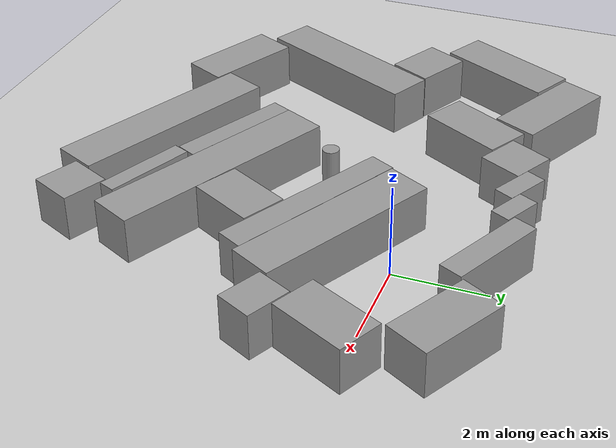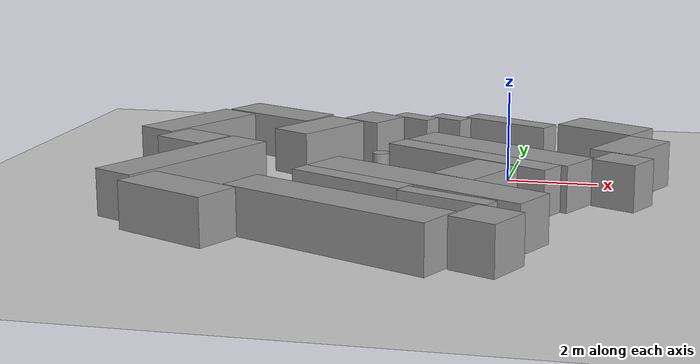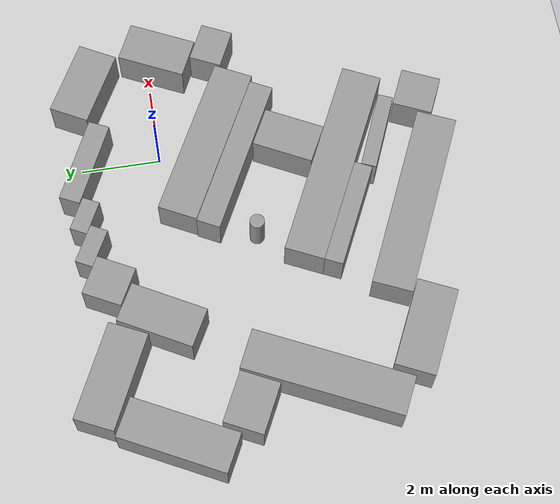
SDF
<sdf version="1.6">
 <world name="default">
  <model name="ground_plane">
   <static>1</static>
   <link name="link">
    <collision name="collision">
     <geometry><plane><normal>0 0 1</normal><size>100 100</size></plane></geometry>
     <surface>
      <contact><collide_bitmask>65535</collide_bitmask></contact>
      <friction><ode><mu>100</mu><mu2>50</mu2></ode></friction>
     </surface>
    </collision>
    <visual name="visual">
     <cast_shadows>0</cast_shadows>
     <geometry><plane><normal>0 0 1</normal><size>100 100</size></plane></geometry>
     <material>
      <script><uri>file://media/materials/scripts/gazebo.material</uri><name>Gazebo/Grey</name></script>
     </material>
    </visual>
   </link>
  </model>
  <light name="sun" type="directional">
   <pose>0 0 10 0 -0 0</pose>
   <diffuse>0.8 0.8 0.8 1</diffuse>
   <specular>0.2 0.2 0.2 1</specular>
   <attenuation>
    <range>1000</range>
    <constant>0.9</constant>
    <linear>0.01</linear>
    <quadratic>0.001</quadratic>
   </attenuation>
   <direction>-0.5 0.1 -0.9</direction>
  </light>
  <gravity>0 0 -9.8</gravity>
  <magnetic_field>6e-06 2.3e-05 -4.2e-05</magnetic_field>
  <atmosphere type="adiabatic"/>
  <physics name="default_physics" default="0" type="ode">
   <max_step_size>0.001</max_step_size>
   <real_time_factor>1</real_time_factor>
   <real_time_update_rate>1000</real_time_update_rate>
  </physics>
  <scene><ambient>0.4 0.4 0.4 1</ambient><background>0.7 0.7 0.7 1</background><shadows>1</shadows></scene>
  <audio><device>default</device></audio>
  <spherical_coordinates>
   <surface_model>EARTH_WGS84</surface_model>
   <latitude_deg>0</latitude_deg>
   <longitude_deg>0</longitude_deg>
   <elevation>0</elevation>
   <heading_deg>0</heading_deg>
  </spherical_coordinates>
  <model name="unit_box">
   <pose>-0.078102 -1.20901 0.5 0 0 -0.479738</pose>
   <link name="link">
    <inertial>
     <mass>1</mass>
     <inertia>
      <ixx>0.166667</ixx>
      <ixy>0</ixy>
      <ixz>0</ixz>
      <iyy>0.166667</iyy>
      <iyz>0</iyz>
      <izz>0.166667</izz>
     </inertia>
    </inertial>
    <collision name="collision"><geometry><box><size>4.18394 1 1</size></box></geometry></collision>
    <visual name="visual">
     <geometry><box><size>4.18394 1 1</size></box></geometry>
     <material>
      <script><name>Gazebo/Grey</name><uri>file://media/materials/scripts/gazebo.material</uri></script>
     </material>
    </visual>
   </link>
  </model>
  <light name="user_point_light_0" type="point">
   <pose>-0.109978 0.021372 1 0 -0 0</pose>
   <diffuse>0.5 0.5 0.5 1</diffuse>
   <specular>0.1 0.1 0.1 1</specular>
   <attenuation>
    <range>20</range>
    <constant>0.5</constant>
    <linear>0.01</linear>
    <quadratic>0.001</quadratic>
   </attenuation>
   <cast_shadows>0</cast_shadows>
   <direction>0 0 -1</direction>
  </light>
  <model name="unit_box_0">
   <pose>2.61788 -1.71368 0.500001 -2e-06 -0 -0.451046</pose>
   <link name="link">
    <inertial>
     <mass>1</mass>
     <inertia>
      <ixx>0.166667</ixx>
      <ixy>0</ixy>
      <ixz>0</ixz>
      <iyy>0.166667</iyy>
      <iyz>0</iyz>
      <izz>0.166667</izz>
     </inertia>
    </inertial>
    <collision name="collision"><geometry><box><size>1 0.813765 1</size></box></geometry></collision>
    <visual name="visual">
     <geometry><box><size>1 0.813765 1</size></box></geometry>
     <material>
      <script><name>Gazebo/Grey</name><uri>file://media/materials/scripts/gazebo.material</uri></script>
     </material>
    </visual>
   </link>
  </model>
  <model name="unit_box_1">
   <pose>2.70088 -0.314628 0.5 0 -0 -0.451496</pose>
   <link name="link">
    <inertial>
     <mass>1</mass>
     <inertia>
      <ixx>0.166667</ixx>
      <ixy>0</ixy>
      <ixz>0</ixz>
      <iyy>0.166667</iyy>
      <iyz>0</iyz>
      <izz>0.166667</izz>
     </inertia>
    </inertial>
    <collision name="collision"><geometry><box><size>1 1.72222 1</size></box></geometry></collision>
    <visual name="visual">
     <geometry><box><size>1 1.72222 1</size></box></geometry>
     <material>
      <script><name>Gazebo/Grey</name><uri>file://media/materials/scripts/gazebo.material</uri></script>
     </material>
    </visual>
   </link>
  </model>
  <model name="unit_box_2">
   <pose>2.02474 1.64614 0.499995 0 -5e-06 -0.497168</pose>
   <link name="link">
    <inertial>
     <mass>1</mass>
     <inertia>
      <ixx>0.166667</ixx>
      <ixy>0</ixy>
      <ixz>0</ixz>
      <iyy>0.166667</iyy>
      <iyz>0</iyz>
      <izz>0.166667</izz>
     </inertia>
    </inertial>
    <collision name="collision"><geometry><box><size>1.93161 1 1</size></box></geometry></collision>
    <visual name="visual">
     <geometry><box><size>1.93161 1 1</size></box></geometry>
     <material>
      <script><name>Gazebo/Grey</name><uri>file://media/materials/scripts/gazebo.material</uri></script>
     </material>
    </visual>
   </link>
  </model>
  <model name="unit_box_3">
   <pose>-0.208431 1.84811 0.5 0 0 -0.447862</pose>
   <link name="link">
    <inertial>
     <mass>1</mass>
     <inertia>
      <ixx>0.166667</ixx>
      <ixy>0</ixy>
      <ixz>0</ixz>
      <iyy>0.166667</iyy>
      <iyz>0</iyz>
      <izz>0.166667</izz>
     </inertia>
    </inertial>
    <collision name="collision"><geometry><box><size>2.1854 0.532691 1</size></box></geometry></collision>
    <visual name="visual">
     <geometry><box><size>2.1854 0.532691 1</size></box></geometry>
     <material>
      <script><name>Gazebo/Grey</name><uri>file://media/materials/scripts/gazebo.material</uri></script>
     </material>
    </visual>
   </link>
  </model>
  <model name="unit_box_4">
   <pose>-1.65857 1.99203 0.5 0 0 -0.471607</pose>
   <link name="link">
    <inertial>
     <mass>1</mass>
     <inertia>
      <ixx>0.166667</ixx>
      <ixy>0</ixy>
      <ixz>0</ixz>
      <iyy>0.166667</iyy>
      <iyz>0</iyz>
      <izz>0.166667</izz>
     </inertia>
    </inertial>
    <collision name="collision"><geometry><box><size>0.872593 0.441047 1</size></box></geometry></collision>
    <visual name="visual">
     <geometry><box><size>0.872593 0.441047 1</size></box></geometry>
     <material>
      <script><name>Gazebo/Grey</name><uri>file://media/materials/scripts/gazebo.material</uri></script>
     </material>
    </visual>
   </link>
  </model>
  <model name="unit_box_5">
   <pose>-2.47866 1.91463 0.5 -0 -0 -0.486724</pose>
   <link name="link">
    <inertial>
     <mass>1</mass>
     <inertia>
      <ixx>0.166667</ixx>
      <ixy>0</ixy>
      <ixz>0</ixz>
      <iyy>0.166667</iyy>
      <iyz>0</iyz>
      <izz>0.166667</izz>
     </inertia>
    </inertial>
    <collision name="collision"><geometry><box><size>1 0.449802 1</size></box></geometry></collision>
    <visual name="visual">
     <geometry><box><size>1 0.449802 1</size></box></geometry>
     <material>
      <script><name>Gazebo/Grey</name><uri>file://media/materials/scripts/gazebo.material</uri></script>
     </material>
    </visual>
   </link>
  </model>
  <model name="unit_box_6">
   <pose>-3.43939 1.60097 0.5 -0 -0 -0.483368</pose>
   <link name="link">
    <inertial>
     <mass>1</mass>
     <inertia>
      <ixx>0.166667</ixx>
      <ixy>0</ixy>
      <ixz>0</ixz>
      <iyy>0.166667</iyy>
      <iyz>0</iyz>
      <izz>0.166667</izz>
     </inertia>
    </inertial>
    <collision name="collision"><geometry><box><size>1 1 1</size></box></geometry></collision>
    <visual name="visual">
     <geometry><box><size>1 1 1</size></box></geometry>
     <material>
      <script><name>Gazebo/Grey</name><uri>file://media/materials/scripts/gazebo.material</uri></script>
     </material>
    </visual>
   </link>
  </model>
  <model name="unit_box_7">
   <pose>-0.532304 -1.88147 0.499991 -1e-06 4e-06 -0.478279</pose>
   <link name="link">
    <inertial>
     <mass>1</mass>
     <inertia>
      <ixx>0.166667</ixx>
      <ixy>0</ixy>
      <ixz>0</ixz>
      <iyy>0.166667</iyy>
      <iyz>0</iyz>
      <izz>0.166667</izz>
     </inertia>
    </inertial>
    <collision name="collision"><geometry><box><size>4.06101 0.602779 1</size></box></geometry></collision>
    <visual name="visual">
     <geometry><box><size>4.06101 0.602779 1</size></box></geometry>
     <material>
      <script><name>Gazebo/Grey</name><uri>file://media/materials/scripts/gazebo.material</uri></script>
     </material>
    </visual>
   </link>
  </model>
  <model name="unit_box_8">
   <pose>-0.250706 -3.26546 0.5 0 -0 -0.47912</pose>
   <link name="link">
    <inertial>
     <mass>1</mass>
     <inertia>
      <ixx>0.166667</ixx>
      <ixy>0</ixy>
      <ixz>0</ixz>
      <iyy>0.166667</iyy>
      <iyz>0</iyz>
      <izz>0.166667</izz>
     </inertia>
    </inertial>
    <collision name="collision"><geometry><box><size>1 1.53321 1</size></box></geometry></collision>
    <visual name="visual">
     <geometry><box><size>1 1.53321 1</size></box></geometry>
     <material>
      <script><name>Gazebo/Grey</name><uri>file://media/materials/scripts/gazebo.material</uri></script>
     </material>
    </visual>
   </link>
  </model>
  <model name="unit_box_9">
   <pose>-1.12893 -4.26361 0.499988 -3e-06 -3e-06 -0.450081</pose>
   <link name="link">
    <inertial>
     <mass>1</mass>
     <inertia>
      <ixx>0.166667</ixx>
      <ixy>0</ixy>
      <ixz>0</ixz>
      <iyy>0.166667</iyy>
      <iyz>0</iyz>
      <izz>0.166667</izz>
     </inertia>
    </inertial>
    <collision name="collision"><geometry><box><size>5.18656 1 1</size></box></geometry></collision>
    <visual name="visual">
     <geometry><box><size>5.18656 1 1</size></box></geometry>
     <material>
      <script><name>Gazebo/Grey</name><uri>file://media/materials/scripts/gazebo.material</uri></script>
     </material>
    </visual>
   </link>
  </model>
  <model name="unit_box_10">
   <pose>-2.55958 -4.38424 0.499985 0 -1.1e-05 -0.450077</pose>
   <link name="link">
    <inertial>
     <mass>1</mass>
     <inertia>
      <ixx>0.166667</ixx>
      <ixy>0</ixy>
      <ixz>0</ixz>
      <iyy>0.166667</iyy>
      <iyz>0</iyz>
      <izz>0.166667</izz>
     </inertia>
    </inertial>
    <collision name="collision"><geometry><box><size>2.71054 0.462001 1</size></box></geometry></collision>
    <visual name="visual">
     <geometry><box><size>2.71054 0.462001 1</size></box></geometry>
     <material>
      <script><name>Gazebo/Grey</name><uri>file://media/materials/scripts/gazebo.material</uri></script>
     </material>
    </visual>
   </link>
  </model>
  <model name="unit_box_11">
   <pose>-0.460904 -5.48454 0.499989 -0 -1.1e-05 -0.398834</pose>
   <link name="link">
    <inertial>
     <mass>1</mass>
     <inertia>
      <ixx>0.166667</ixx>
      <ixy>0</ixy>
      <ixz>0</ixz>
      <iyy>0.166667</iyy>
      <iyz>0</iyz>
      <izz>0.166667</izz>
     </inertia>
    </inertial>
    <collision name="collision"><geometry><box><size>1.99706 0.379816 1</size></box></geometry></collision>
    <visual name="visual">
     <geometry><box><size>1.99706 0.379816 1</size></box></geometry>
     <material>
      <script><name>Gazebo/Grey</name><uri>file://media/materials/scripts/gazebo.material</uri></script>
     </material>
    </visual>
   </link>
  </model>
  <model name="unit_box_12">
   <pose>0.47965 -6.6758 0.499995 1e-05 -0 -0.429188</pose>
   <link name="link">
    <inertial>
     <mass>1</mass>
     <inertia>
      <ixx>0.166667</ixx>
      <ixy>0</ixy>
      <ixz>0</ixz>
      <iyy>0.166667</iyy>
      <iyz>0</iyz>
      <izz>0.166667</izz>
     </inertia>
    </inertial>
    <collision name="collision"><geometry><box><size>1 1 1</size></box></geometry></collision>
    <visual name="visual">
     <geometry><box><size>1 1 1</size></box></geometry>
     <material>
      <script><name>Gazebo/Grey</name><uri>file://media/materials/scripts/gazebo.material</uri></script>
     </material>
    </visual>
   </link>
  </model>
  <model name="unit_box_13">
   <pose>-2.46124 -6.05208 0.499999 1e-06 0 -0.426449</pose>
   <link name="link">
    <inertial>
     <mass>1</mass>
     <inertia>
      <ixx>0.166667</ixx>
      <ixy>0</ixy>
      <ixz>0</ixz>
      <iyy>0.166667</iyy>
      <iyz>0</iyz>
      <izz>0.166667</izz>
     </inertia>
    </inertial>
    <collision name="collision"><geometry><box><size>4.76978 1 1</size></box></geometry></collision>
    <visual name="visual">
     <geometry><box><size>4.76978 1 1</size></box></geometry>
     <material>
      <script><name>Gazebo/Grey</name><uri>file://media/materials/scripts/gazebo.material</uri></script>
     </material>
    </visual>
   </link>
  </model>
  <model name="unit_box_14">
   <pose>-4.48597 0.459545 0.499995 5e-06 -0 -0.501951</pose>
   <link name="link">
    <inertial>
     <mass>1</mass>
     <inertia>
      <ixx>0.166667</ixx>
      <ixy>0</ixy>
      <ixz>0</ixz>
      <iyy>0.166667</iyy>
      <iyz>0</iyz>
      <izz>0.166667</izz>
     </inertia>
    </inertial>
    <collision name="collision"><geometry><box><size>1 1.9353 1</size></box></geometry></collision>
    <visual name="visual">
     <geometry><box><size>1 1.9353 1</size></box></geometry>
     <material>
      <script><name>Gazebo/Grey</name><uri>file://media/materials/scripts/gazebo.material</uri></script>
     </material>
    </visual>
   </link>
  </model>
  <model name="unit_box_15">
   <pose>-6.48104 -3.1771 0.5 0 1e-06 -0.448126</pose>
   <link name="link">
    <inertial>
     <mass>1</mass>
     <inertia>
      <ixx>0.166667</ixx>
      <ixy>0</ixy>
      <ixz>0</ixz>
      <iyy>0.166667</iyy>
      <iyz>0</iyz>
      <izz>0.166667</izz>
     </inertia>
    </inertial>
    <collision name="collision"><geometry><box><size>1 3.99612 1</size></box></geometry></collision>
    <visual name="visual">
     <geometry><box><size>1 3.99612 1</size></box></geometry>
     <material>
      <script><name>Gazebo/Grey</name><uri>file://media/materials/scripts/gazebo.material</uri></script>
     </material>
    </visual>
   </link>
  </model>
  <model name="unit_box_16">
   <pose>-5.74165 -5.6689 0.5 -0 -0 -0.445243</pose>
   <link name="link">
    <inertial>
     <mass>1</mass>
     <inertia>
      <ixx>0.166667</ixx>
      <ixy>0</ixy>
      <ixz>0</ixz>
      <iyy>0.166667</iyy>
      <iyz>0</iyz>
      <izz>0.166667</izz>
     </inertia>
    </inertial>
    <collision name="collision"><geometry><box><size>2.22222 1 1</size></box></geometry></collision>
    <visual name="visual">
     <geometry><box><size>2.22222 1 1</size></box></geometry>
     <material>
      <script><name>Gazebo/Grey</name><uri>file://media/materials/scripts/gazebo.material</uri></script>
     </material>
    </visual>
   </link>
  </model>
  <model name="unit_box_17">
   <pose>-5.79935 1.81395 0.5 0 0 -0.450686</pose>
   <link name="link">
    <inertial>
     <mass>1</mass>
     <inertia>
      <ixx>0.166667</ixx>
      <ixy>0</ixy>
      <ixz>0</ixz>
      <iyy>0.166667</iyy>
      <iyz>0</iyz>
      <izz>0.166667</izz>
     </inertia>
    </inertial>
    <collision name="collision"><geometry><box><size>2.4571 1 1</size></box></geometry></collision>
    <visual name="visual">
     <geometry><box><size>2.4571 1 1</size></box></geometry>
     <material>
      <script><name>Gazebo/Grey</name><uri>file://media/materials/scripts/gazebo.material</uri></script>
     </material>
    </visual>
   </link>
  </model>
  <model name="unit_box_18">
   <pose>-7.42631 0.454239 0.5 0 -0 -0.473935</pose>
   <link name="link">
    <inertial>
     <mass>1</mass>
     <inertia>
      <ixx>0.166667</ixx>
      <ixy>0</ixy>
      <ixz>0</ixz>
      <iyy>0.166667</iyy>
      <iyz>0</iyz>
      <izz>0.166667</izz>
     </inertia>
    </inertial>
    <collision name="collision"><geometry><box><size>1 2.71304 1</size></box></geometry></collision>
    <visual name="visual">
     <geometry><box><size>1 2.71304 1</size></box></geometry>
     <material>
      <script><name>Gazebo/Grey</name><uri>file://media/materials/scripts/gazebo.material</uri></script>
     </material>
    </visual>
   </link>
  </model>
  <model name="unit_box_19">
   <pose>-6.92796 -1.32142 0.5 -0 -0 -0.463352</pose>
   <link name="link">
    <inertial>
     <mass>1</mass>
     <inertia>
      <ixx>0.166667</ixx>
      <ixy>0</ixy>
      <ixz>0</ixz>
      <iyy>0.166667</iyy>
      <iyz>0</iyz>
      <izz>0.166667</izz>
     </inertia>
    </inertial>
    <collision name="collision"><geometry><box><size>1.29928 1 1</size></box></geometry></collision>
    <visual name="visual">
     <geometry><box><size>1.29928 1 1</size></box></geometry>
     <material>
      <script><name>Gazebo/Grey</name><uri>file://media/materials/scripts/gazebo.material</uri></script>
     </material>
    </visual>
   </link>
  </model>
  <model name="unit_cylinder">
   <pose>-2.45037 -2.1341 0.499991 0 -0 2e-06</pose>
   <link name="link">
    <inertial>
     <mass>1</mass>
     <inertia><ixx>0.145833</ixx><ixy>0</ixy><ixz>0</ixz><iyy>0.145833</iyy><iyz>0</iyz><izz>0.125</izz></inertia>
    </inertial>
    <collision name="collision">
     <geometry><cylinder><radius>0.183436</radius><length>1</length></cylinder></geometry>
    </collision>
    <visual name="visual">
     <geometry><cylinder><radius>0.183436</radius><length>1</length></cylinder></geometry>
     <material>
      <script><name>Gazebo/Grey</name><uri>file://media/materials/scripts/gazebo.material</uri></script>
     </material>
    </visual>
   </link>
  </model>
 </world>
</sdf>
